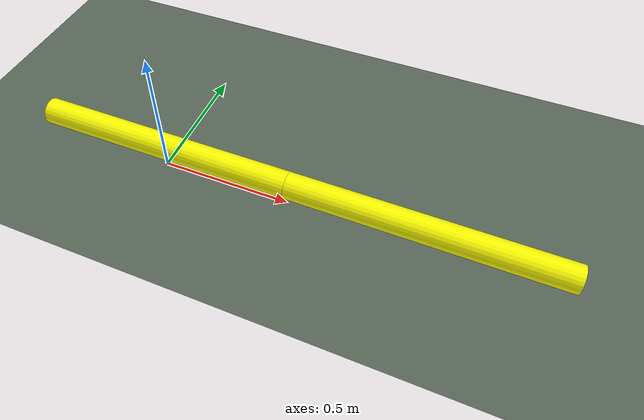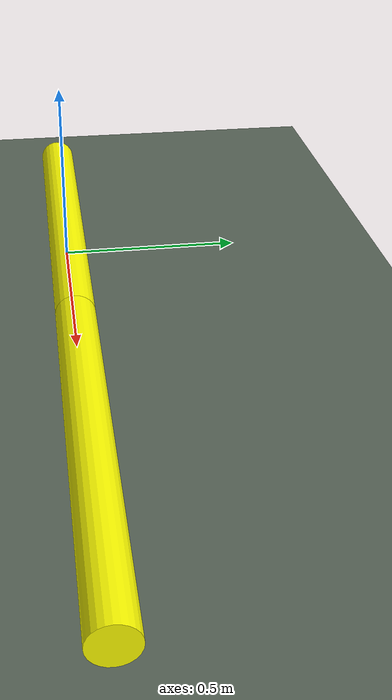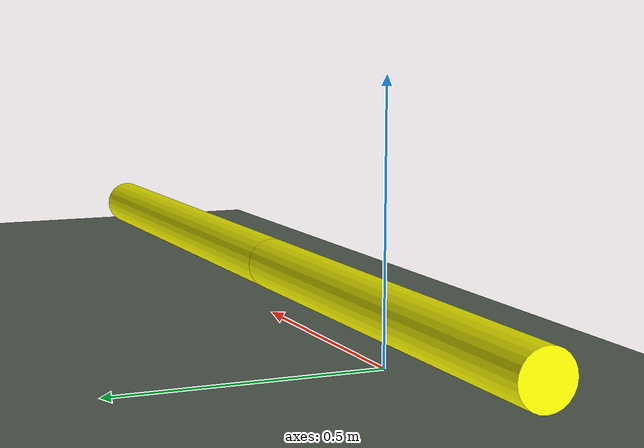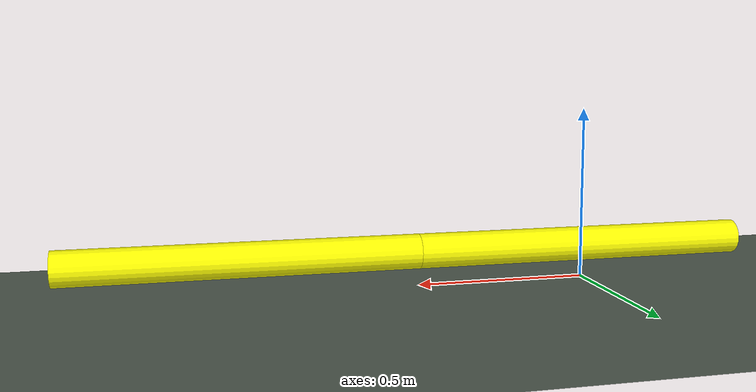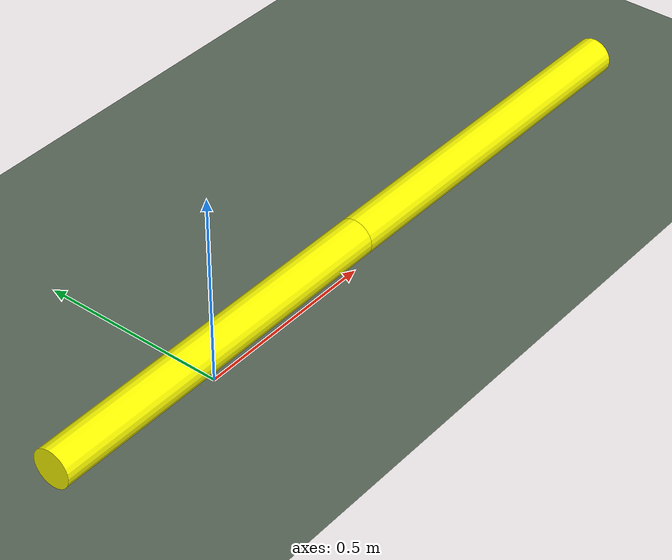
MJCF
<mujoco>
<option timestep="0.005" gravity="0 0 -9.81" integrator="RK4">
    <flag energy="enable" contact="enable" sensornoise="enable"/>
</option>
  <asset>
    <texture name="grid" type="2d" builtin="checker" rgb1=".5 .5 .3"
     rgb2=".2 .3 .4" width="300" height="300"/>
    <material name="grid" texture="grid" texrepeat="8 8" reflectance=".2"/>
  </asset>

  <worldbody>
  <light diffuse="0.5 0.5 0.5" pos="0 0 10" dir="0 0 -1"/>
  <camera pos="-0.225 -3.653 6.399" xyaxes="0.999 0.044 0.000 -0.036 0.816 0.577"/>
  <geom type="plane" size="3 3 0.1" material="grid"/>
     <body name="box_body" pos="0 0 0.1" euler="0 90 0">
      <joint name="q_0" type="hinge" pos ="0 0 -0.5" axis= "-1 0 0" damping="0.4" frictionloss="0.1"/>
      <geom name="box_geo" type="cylinder" size="0.05 0.5" rgba="1 1 0 1" mass="1"/>
        <body name="box_arm" pos="0 0 1" euler="0 0 0">
        <joint name="q_1" type="hinge" pos ="0 0 -0.5" axis= "-1 0 0" damping="0.1" frictionloss="0.05"/>
        <geom name="box_arm" type="cylinder" size="0.05 0.5" rgba="1 1 0 1" mass="1"/>
      </body>
      </body>
  </worldbody>
  <actuator>
    <position name="position_servo_0" joint="q_0" kp="0"/>
    <velocity name="velocity_servo_0" joint="q_0" kv="12"/>

    <position name="position_servo_1" joint="q_1" kp="0"/>
    <velocity name="velocity_servo_1" joint="q_1" kv="5"/>
    </actuator>
  <sensor>
  <jointpos name="q_0" joint="q_0" noise="0.003"/>
  <jointpos name="q_1" joint="q_1" noise="0.003"/>
  <jointvel name="q_0p" joint="q_0" noise="0.003"/>
  <jointvel name="q_1p" joint="q_1" noise="0.003"/>
  </sensor>
</mujoco>
